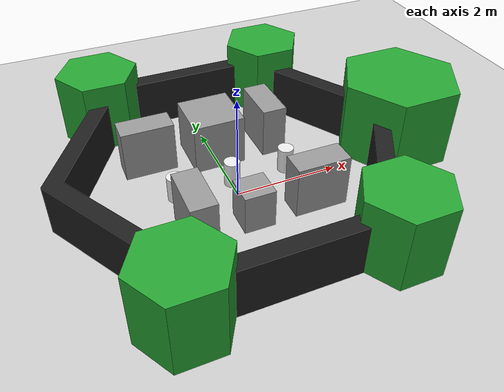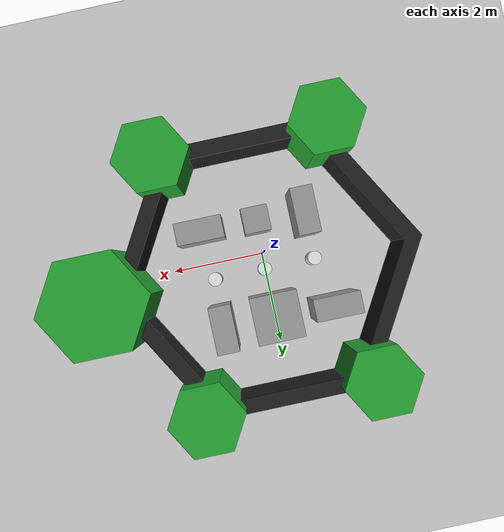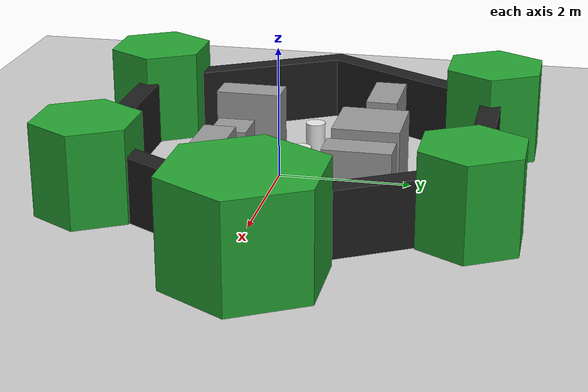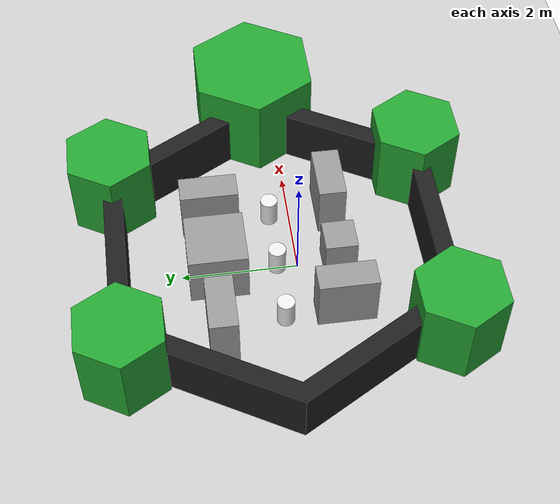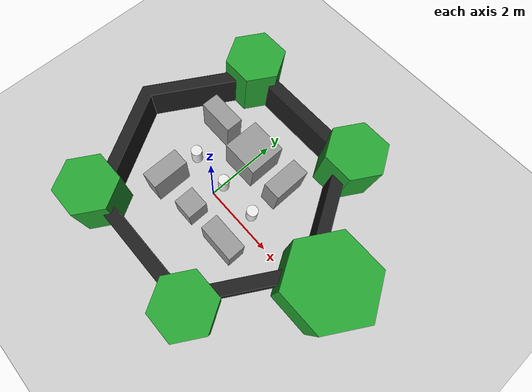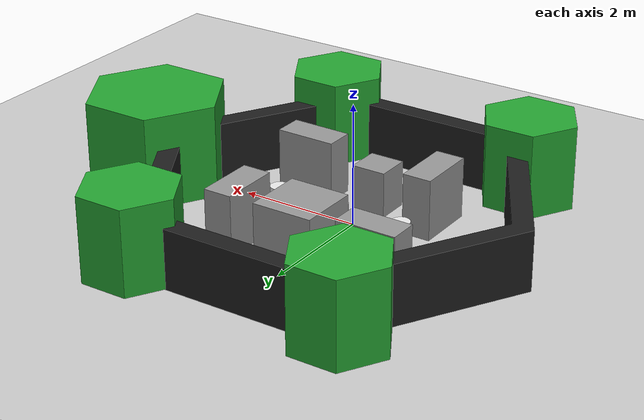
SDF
<sdf version="1.6">
 <world name="default">
  <model name="ground_plane">
   <static>1</static>
   <link name="link">
    <collision name="collision">
     <geometry><plane><normal>0 0 1</normal><size>100 100</size></plane></geometry>
     <surface>
      <contact><collide_bitmask>65535</collide_bitmask></contact>
      <friction><ode><mu>100</mu><mu2>50</mu2></ode></friction>
     </surface>
    </collision>
    <visual name="visual">
     <cast_shadows>0</cast_shadows>
     <geometry><plane><normal>0 0 1</normal><size>100 100</size></plane></geometry>
     <material>
      <script><uri>file://media/materials/scripts/gazebo.material</uri><name>Gazebo/Grey</name></script>
     </material>
    </visual>
   </link>
  </model>
  <model name="ros_symbol">
   <model name="modified_start_world.world">
    <link name="symbol">
     <visual name="one_one">
      <pose>-1.1 -1.1 0.25 0 -0 0</pose>
      <geometry><cylinder><radius>0.15</radius><length>0.5</length></cylinder></geometry>
      <material>
       <script><uri>file://media/materials/scripts/gazebo.material</uri><name>Gazebo/White</name></script>
      </material>
     </visual>
     <visual name="one_two">
      <pose>-1.1 0 0.25 0 -0 0</pose>
      <geometry><cylinder><radius>0.15</radius><length>0.5</length></cylinder></geometry>
      <material>
       <script><uri>file://media/materials/scripts/gazebo.material</uri><name>Gazebo/White</name></script>
      </material>
     </visual>
     <visual name="one_three">
      <pose>-1.1 1.1 0.25 0 -0 0</pose>
      <geometry><cylinder><radius>0.15</radius><length>0.5</length></cylinder></geometry>
      <material>
       <script><uri>file://media/materials/scripts/gazebo.material</uri><name>Gazebo/White</name></script>
      </material>
     </visual>
     <visual name="two_one">
      <pose>0 -1.1 0.25 0 -0 0</pose>
      <geometry><cylinder><radius>0.15</radius><length>0.5</length></cylinder></geometry>
      <material>
       <script><uri>file://media/materials/scripts/gazebo.material</uri><name>Gazebo/White</name></script>
      </material>
     </visual>
     <visual name="two_two">
      <pose>0 0 0.25 0 -0 0</pose>
      <geometry><cylinder><radius>0.15</radius><length>0.5</length></cylinder></geometry>
      <material>
       <script><uri>file://media/materials/scripts/gazebo.material</uri><name>Gazebo/White</name></script>
      </material>
     </visual>
     <visual name="two_three">
      <pose>0 1.1 0.25 0 -0 0</pose>
      <geometry><cylinder><radius>0.15</radius><length>0.5</length></cylinder></geometry>
      <material>
       <script><uri>file://media/materials/scripts/gazebo.material</uri><name>Gazebo/White</name></script>
      </material>
     </visual>
     <visual name="three_one">
      <pose>1.1 -1.1 0.25 0 -0 0</pose>
      <geometry><cylinder><radius>0.15</radius><length>0.5</length></cylinder></geometry>
      <material>
       <script><uri>file://media/materials/scripts/gazebo.material</uri><name>Gazebo/White</name></script>
      </material>
     </visual>
     <visual name="three_two">
      <pose>1.1 0 0.25 0 -0 0</pose>
      <geometry><cylinder><radius>0.15</radius><length>0.5</length></cylinder></geometry>
      <material>
       <script><uri>file://media/materials/scripts/gazebo.material</uri><name>Gazebo/White</name></script>
      </material>
     </visual>
     <visual name="three_three">
      <pose>1.1 1.1 0.25 0 -0 0</pose>
      <geometry><cylinder><radius>0.15</radius><length>0.5</length></cylinder></geometry>
      <material>
       <script><uri>file://media/materials/scripts/gazebo.material</uri><name>Gazebo/White</name></script>
      </material>
     </visual>
     <visual name="head">
      <pose>3.5 0 -0.5 0 -0 0</pose>
      <geometry><mesh><uri>model://turtlebot3/meshes/hexagon.dae</uri><scale>0.8 0.8 0.8</scale></mesh></geometry>
      <material>
       <script><uri>file://media/materials/scripts/gazebo.material</uri><name>Gazebo/Green</name></script>
      </material>
     </visual>
     <visual name="left_hand">
      <pose>1.8 2.7 0 0 -0 0</pose>
      <geometry>
       <mesh><uri>model://turtlebot3/meshes/hexagon.dae</uri><scale>0.55 0.55 0.55</scale></mesh>
      </geometry>
      <material>
       <script><uri>file://media/materials/scripts/gazebo.material</uri><name>Gazebo/Green</name></script>
      </material>
     </visual>
     <visual name="right_hand">
      <pose>1.8 -2.7 0 0 -0 0</pose>
      <geometry>
       <mesh><uri>model://turtlebot3/meshes/hexagon.dae</uri><scale>0.55 0.55 0.55</scale></mesh>
      </geometry>
      <material>
       <script><uri>file://media/materials/scripts/gazebo.material</uri><name>Gazebo/Green</name></script>
      </material>
     </visual>
     <visual name="left_foot">
      <pose>-1.8 2.7 0 0 -0 0</pose>
      <geometry>
       <mesh><uri>model://turtlebot3/meshes/hexagon.dae</uri><scale>0.55 0.55 0.55</scale></mesh>
      </geometry>
      <material>
       <script><uri>file://media/materials/scripts/gazebo.material</uri><name>Gazebo/Green</name></script>
      </material>
     </visual>
     <visual name="right_foot">
      <pose>-1.8 -2.7 0 0 -0 0</pose>
      <geometry>
       <mesh><uri>model://turtlebot3/meshes/hexagon.dae</uri><scale>0.55 0.55 0.55</scale></mesh>
      </geometry>
      <material>
       <script><uri>file://media/materials/scripts/gazebo.material</uri><name>Gazebo/Green</name></script>
      </material>
     </visual>
     <visual name="body">
      <pose>0 0 -0.3 0 0 -1.5708</pose>
      <geometry><mesh><uri>model://turtlebot3/meshes/wall.dae</uri><scale>0.25 0.25 0.25</scale></mesh></geometry>
      <material>
       <script><uri>file://media/materials/scripts/gazebo.material</uri><name>Gazebo/FlatBlack</name></script>
      </material>
     </visual>
     <collision name="one_one">
      <pose>-1.1 -1.1 0.25 0 -0 0</pose>
      <geometry><cylinder><radius>0.15</radius><length>0.5</length></cylinder></geometry>
      <surface>
       <friction>
        <ode><mu>1</mu><mu2>1</mu2><fdir1>0 0 0</fdir1><slip1>0</slip1><slip2>0</slip2></ode>
        <torsional>
         <coefficient>1</coefficient>
         <patch_radius>0</patch_radius>
         <surface_radius>0</surface_radius>
         <use_patch_radius>1</use_patch_radius>
         <ode><slip>0</slip></ode>
        </torsional>
       </friction>
       <bounce><restitution_coefficient>0</restitution_coefficient><threshold>1e+06</threshold></bounce>
       <contact>
        <collide_without_contact>0</collide_without_contact>
        <collide_without_contact_bitmask>1</collide_without_contact_bitmask>
        <collide_bitmask>1</collide_bitmask>
        <ode>
         <soft_cfm>0</soft_cfm>
         <soft_erp>0.2</soft_erp>
         <kp>1e+13</kp>
         <kd>1</kd>
         <max_vel>0.01</max_vel>
         <min_depth>0</min_depth>
        </ode>
        <bullet>
         <split_impulse>1</split_impulse>
         <split_impulse_penetration_threshold>-0.01</split_impulse_penetration_threshold>
         <soft_cfm>0</soft_cfm>
         <soft_erp>0.2</soft_erp>
         <kp>1e+13</kp>
         <kd>1</kd>
        </bullet>
       </contact>
      </surface>
     </collision>
     <collision name="one_two">
      <pose>-1.1 0 0.25 0 -0 0</pose>
      <geometry><cylinder><radius>0.15</radius><length>0.5</length></cylinder></geometry>
      <surface>
       <friction>
        <ode><mu>1</mu><mu2>1</mu2><fdir1>0 0 0</fdir1><slip1>0</slip1><slip2>0</slip2></ode>
        <torsional>
         <coefficient>1</coefficient>
         <patch_radius>0</patch_radius>
         <surface_radius>0</surface_radius>
         <use_patch_radius>1</use_patch_radius>
         <ode><slip>0</slip></ode>
        </torsional>
       </friction>
       <bounce><restitution_coefficient>0</restitution_coefficient><threshold>1e+06</threshold></bounce>
       <contact>
        <collide_without_contact>0</collide_without_contact>
        <collide_without_contact_bitmask>1</collide_without_contact_bitmask>
        <collide_bitmask>1</collide_bitmask>
        <ode>
         <soft_cfm>0</soft_cfm>
         <soft_erp>0.2</soft_erp>
         <kp>1e+13</kp>
         <kd>1</kd>
         <max_vel>0.01</max_vel>
         <min_depth>0</min_depth>
        </ode>
        <bullet>
         <split_impulse>1</split_impulse>
         <split_impulse_penetration_threshold>-0.01</split_impulse_penetration_threshold>
         <soft_cfm>0</soft_cfm>
         <soft_erp>0.2</soft_erp>
         <kp>1e+13</kp>
         <kd>1</kd>
        </bullet>
       </contact>
      </surface>
     </collision>
     <collision name="one_three">
      <pose>-1.1 1.1 0.25 0 -0 0</pose>
      <geometry><cylinder><radius>0.15</radius><length>0.5</length></cylinder></geometry>
      <surface>
       <friction>
        <ode><mu>1</mu><mu2>1</mu2><fdir1>0 0 0</fdir1><slip1>0</slip1><slip2>0</slip2></ode>
        <torsional>
         <coefficient>1</coefficient>
         <patch_radius>0</patch_radius>
         <surface_radius>0</surface_radius>
         <use_patch_radius>1</use_patch_radius>
         <ode><slip>0</slip></ode>
        </torsional>
       </friction>
       <bounce><restitution_coefficient>0</restitution_coefficient><threshold>1e+06</threshold></bounce>
       <contact>
        <collide_without_contact>0</collide_without_contact>
        <collide_without_contact_bitmask>1</collide_without_contact_bitmask>
        <collide_bitmask>1</collide_bitmask>
        <ode>
         <soft_cfm>0</soft_cfm>
         <soft_erp>0.2</soft_erp>
         <kp>1e+13</kp>
         <kd>1</kd>
         <max_vel>0.01</max_vel>
         <min_depth>0</min_depth>
        </ode>
        <bullet>
         <split_impulse>1</split_impulse>
         <split_impulse_penetration_threshold>-0.01</split_impulse_penetration_threshold>
         <soft_cfm>0</soft_cfm>
         <soft_erp>0.2</soft_erp>
         <kp>1e+13</kp>
         <kd>1</kd>
        </bullet>
       </contact>
      </surface>
     </collision>
     <collision name="two_one">
      <pose>0 -1.1 0.25 0 -0 0</pose>
      <geometry><cylinder><radius>0.15</radius><length>0.5</length></cylinder></geometry>
      <surface>
       <friction>
        <ode><mu>1</mu><mu2>1</mu2><fdir1>0 0 0</fdir1><slip1>0</slip1><slip2>0</slip2></ode>
        <torsional>
         <coefficient>1</coefficient>
         <patch_radius>0</patch_radius>
         <surface_radius>0</surface_radius>
         <use_patch_radius>1</use_patch_radius>
         <ode><slip>0</slip></ode>
        </torsional>
       </friction>
       <bounce><restitution_coefficient>0</restitution_coefficient><threshold>1e+06</threshold></bounce>
       <contact>
        <collide_without_contact>0</collide_without_contact>
        <collide_without_contact_bitmask>1</collide_without_contact_bitmask>
        <collide_bitmask>1</collide_bitmask>
        <ode>
         <soft_cfm>0</soft_cfm>
         <soft_erp>0.2</soft_erp>
         <kp>1e+13</kp>
         <kd>1</kd>
         <max_vel>0.01</max_vel>
         <min_depth>0</min_depth>
        </ode>
        <bullet>
         <split_impulse>1</split_impulse>
         <split_impulse_penetration_threshold>-0.01</split_impulse_penetration_threshold>
         <soft_cfm>0</soft_cfm>
         <soft_erp>0.2</soft_erp>
         <kp>1e+13</kp>
         <kd>1</kd>
        </bullet>
       </contact>
      </surface>
     </collision>
     <collision name="two_two">
      <pose>0 0 0.25 0 -0 0</pose>
      <geometry><cylinder><radius>0.15</radius><length>0.5</length></cylinder></geometry>
      <surface>
       <friction>
        <ode><mu>1</mu><mu2>1</mu2><fdir1>0 0 0</fdir1><slip1>0</slip1><slip2>0</slip2></ode>
        <torsional>
         <coefficient>1</coefficient>
         <patch_radius>0</patch_radius>
         <surface_radius>0</surface_radius>
         <use_patch_radius>1</use_patch_radius>
         <ode><slip>0</slip></ode>
        </torsional>
       </friction>
       <bounce><restitution_coefficient>0</restitution_coefficient><threshold>1e+06</threshold></bounce>
       <contact>
        <collide_without_contact>0</collide_without_contact>
        <collide_without_contact_bitmask>1</collide_without_contact_bitmask>
        <collide_bitmask>1</collide_bitmask>
        <ode>
         <soft_cfm>0</soft_cfm>
         <soft_erp>0.2</soft_erp>
         <kp>1e+13</kp>
         <kd>1</kd>
         <max_vel>0.01</max_vel>
         <min_depth>0</min_depth>
        </ode>
        <bullet>
         <split_impulse>1</split_impulse>
         <split_impulse_penetration_threshold>-0.01</split_impulse_penetration_threshold>
         <soft_cfm>0</soft_cfm>
         <soft_erp>0.2</soft_erp>
         <kp>1e+13</kp>
         <kd>1</kd>
        </bullet>
       </contact>
      </surface>
     </collision>
     <collision name="two_three">
      <pose>0 1.1 0.25 0 -0 0</pose>
      <geometry><cylinder><radius>0.15</radius><length>0.5</length></cylinder></geometry>
      <surface>
       <friction>
        <ode><mu>1</mu><mu2>1</mu2><fdir1>0 0 0</fdir1><slip1>0</slip1><slip2>0</slip2></ode>
        <torsional>
         <coefficient>1</coefficient>
         <patch_radius>0</patch_radius>
         <surface_radius>0</surface_radius>
         <use_patch_radius>1</use_patch_radius>
         <ode><slip>0</slip></ode>
        </torsional>
       </friction>
       <bounce><restitution_coefficient>0</restitution_coefficient><threshold>1e+06</threshold></bounce>
       <contact>
        <collide_without_contact>0</collide_without_contact>
        <collide_without_contact_bitmask>1</collide_without_contact_bitmask>
        <collide_bitmask>1</collide_bitmask>
        <ode>
         <soft_cfm>0</soft_cfm>
         <soft_erp>0.2</soft_erp>
         <kp>1e+13</kp>
         <kd>1</kd>
         <max_vel>0.01</max_vel>
         <min_depth>0</min_depth>
        </ode>
        <bullet>
         <split_impulse>1</split_impulse>
         <split_impulse_penetration_threshold>-0.01</split_impulse_penetration_threshold>
         <soft_cfm>0</soft_cfm>
         <soft_erp>0.2</soft_erp>
         <kp>1e+13</kp>
         <kd>1</kd>
        </bullet>
       </contact>
      </surface>
     </collision>
     <collision name="three_one">
      <pose>1.1 -1.1 0.25 0 -0 0</pose>
      <geometry><cylinder><radius>0.15</radius><length>0.5</length></cylinder></geometry>
      <surface>
       <friction>
        <ode><mu>1</mu><mu2>1</mu2><fdir1>0 0 0</fdir1><slip1>0</slip1><slip2>0</slip2></ode>
        <torsional>
         <coefficient>1</coefficient>
         <patch_radius>0</patch_radius>
         <surface_radius>0</surface_radius>
         <use_patch_radius>1</use_patch_radius>
         <ode><slip>0</slip></ode>
        </torsional>
       </friction>
       <bounce><restitution_coefficient>0</restitution_coefficient><threshold>1e+06</threshold></bounce>
       <contact>
        <collide_without_contact>0</collide_without_contact>
        <collide_without_contact_bitmask>1</collide_without_contact_bitmask>
        <collide_bitmask>1</collide_bitmask>
        <ode>
         <soft_cfm>0</soft_cfm>
         <soft_erp>0.2</soft_erp>
         <kp>1e+13</kp>
         <kd>1</kd>
         <max_vel>0.01</max_vel>
         <min_depth>0</min_depth>
        </ode>
        <bullet>
         <split_impulse>1</split_impulse>
         <split_impulse_penetration_threshold>-0.01</split_impulse_penetration_threshold>
         <soft_cfm>0</soft_cfm>
         <soft_erp>0.2</soft_erp>
         <kp>1e+13</kp>
         <kd>1</kd>
        </bullet>
       </contact>
      </surface>
     </collision>
     <collision name="three_two">
      <pose>1.1 0 0.25 0 -0 0</pose>
      <geometry><cylinder><radius>0.15</radius><length>0.5</length></cylinder></geometry>
      <surface>
       <friction>
        <ode><mu>1</mu><mu2>1</mu2><fdir1>0 0 0</fdir1><slip1>0</slip1><slip2>0</slip2></ode>
        <torsional>
         <coefficient>1</coefficient>
         <patch_radius>0</patch_radius>
         <surface_radius>0</surface_radius>
         <use_patch_radius>1</use_patch_radius>
         <ode><slip>0</slip></ode>
        </torsional>
       </friction>
       <bounce><restitution_coefficient>0</restitution_coefficient><threshold>1e+06</threshold></bounce>
       <contact>
        <collide_without_contact>0</collide_without_contact>
        <collide_without_contact_bitmask>1</collide_without_contact_bitmask>
        <collide_bitmask>1</collide_bitmask>
        <ode>
         <soft_cfm>0</soft_cfm>
         <soft_erp>0.2</soft_erp>
         <kp>1e+13</kp>
         <kd>1</kd>
         <max_vel>0.01</max_vel>
         <min_depth>0</min_depth>
        </ode>
        <bullet>
         <split_impulse>1</split_impulse>
         <split_impulse_penetration_threshold>-0.01</split_impulse_penetration_threshold>
         <soft_cfm>0</soft_cfm>
         <soft_erp>0.2</soft_erp>
         <kp>1e+13</kp>
         <kd>1</kd>
        </bullet>
       </contact>
      </surface>
     </collision>
     <collision name="three_three">
      <pose>1.1 1.1 0.25 0 -0 0</pose>
      <geometry><cylinder><radius>0.15</radius><length>0.5</length></cylinder></geometry>
      <surface>
       <friction>
        <ode><mu>1</mu><mu2>1</mu2><fdir1>0 0 0</fdir1><slip1>0</slip1><slip2>0</slip2></ode>
        <torsional>
         <coefficient>1</coefficient>
         <patch_radius>0</patch_radius>
         <surface_radius>0</surface_radius>
         <use_patch_radius>1</use_patch_radius>
         <ode><slip>0</slip></ode>
        </torsional>
       </friction>
       <bounce><restitution_coefficient>0</restitution_coefficient><threshold>1e+06</threshold></bounce>
       <contact>
        <collide_without_contact>0</collide_without_contact>
        <collide_without_contact_bitmask>1</collide_without_contact_bitmask>
        <collide_bitmask>1</collide_bitmask>
        <ode>
         <soft_cfm>0</soft_cfm>
         <soft_erp>0.2</soft_erp>
         <kp>1e+13</kp>
         <kd>1</kd>
         <max_vel>0.01</max_vel>
         <min_depth>0</min_depth>
        </ode>
        <bullet>
         <split_impulse>1</split_impulse>
         <split_impulse_penetration_threshold>-0.01</split_impulse_penetration_threshold>
         <soft_cfm>0</soft_cfm>
         <soft_erp>0.2</soft_erp>
         <kp>1e+13</kp>
         <kd>1</kd>
        </bullet>
       </contact>
      </surface>
     </collision>
     <collision name="head">
      <pose>3.5 0 -0.5 0 -0 0</pose>
      <geometry>
       <mesh>
        <uri>/home/rishabh/genesys2_ws/src/turtlebot3/turtlebot3_simulations/turtlebot3_gazebo/models/turtlebot3/meshes/hexagon.dae</uri>
        <scale>0.8 0.8 0.8</scale>
       </mesh>
      </geometry>
      <surface>
       <friction>
        <ode><mu>1</mu><mu2>1</mu2><fdir1>0 0 0</fdir1><slip1>0</slip1><slip2>0</slip2></ode>
        <torsional>
         <coefficient>1</coefficient>
         <patch_radius>0</patch_radius>
         <surface_radius>0</surface_radius>
         <use_patch_radius>1</use_patch_radius>
         <ode><slip>0</slip></ode>
        </torsional>
       </friction>
       <bounce><restitution_coefficient>0</restitution_coefficient><threshold>1e+06</threshold></bounce>
       <contact>
        <collide_without_contact>0</collide_without_contact>
        <collide_without_contact_bitmask>1</collide_without_contact_bitmask>
        <collide_bitmask>1</collide_bitmask>
        <ode>
         <soft_cfm>0</soft_cfm>
         <soft_erp>0.2</soft_erp>
         <kp>1e+13</kp>
         <kd>1</kd>
         <max_vel>0.01</max_vel>
         <min_depth>0</min_depth>
        </ode>
        <bullet>
         <split_impulse>1</split_impulse>
         <split_impulse_penetration_threshold>-0.01</split_impulse_penetration_threshold>
         <soft_cfm>0</soft_cfm>
         <soft_erp>0.2</soft_erp>
         <kp>1e+13</kp>
         <kd>1</kd>
        </bullet>
       </contact>
      </surface>
     </collision>
     <collision name="left_hand">
      <pose>1.8 2.7 0 0 -0 0</pose>
      <geometry>
       <mesh>
        <uri>/home/rishabh/genesys2_ws/src/turtlebot3/turtlebot3_simulations/turtlebot3_gazebo/models/turtlebot3/meshes/hexagon.dae</uri>
        <scale>0.55 0.55 0.55</scale>
       </mesh>
      </geometry>
      <surface>
       <friction>
        <ode><mu>1</mu><mu2>1</mu2><fdir1>0 0 0</fdir1><slip1>0</slip1><slip2>0</slip2></ode>
        <torsional>
         <coefficient>1</coefficient>
         <patch_radius>0</patch_radius>
         <surface_radius>0</surface_radius>
         <use_patch_radius>1</use_patch_radius>
         <ode><slip>0</slip></ode>
        </torsional>
       </friction>
       <bounce><restitution_coefficient>0</restitution_coefficient><threshold>1e+06</threshold></bounce>
       <contact>
        <collide_without_contact>0</collide_without_contact>
        <collide_without_contact_bitmask>1</collide_without_contact_bitmask>
        <collide_bitmask>1</collide_bitmask>
        <ode>
         <soft_cfm>0</soft_cfm>
         <soft_erp>0.2</soft_erp>
         <kp>1e+13</kp>
         <kd>1</kd>
         <max_vel>0.01</max_vel>
         <min_depth>0</min_depth>
        </ode>
        <bullet>
         <split_impulse>1</split_impulse>
         <split_impulse_penetration_threshold>-0.01</split_impulse_penetration_threshold>
         <soft_cfm>0</soft_cfm>
         <soft_erp>0.2</soft_erp>
         <kp>1e+13</kp>
         <kd>1</kd>
        </bullet>
       </contact>
      </surface>
     </collision>
     <collision name="left_foot">
      <pose>-1.8 2.7 0 0 -0 0</pose>
      <geometry>
       <mesh>
        <uri>/home/rishabh/genesys2_ws/src/turtlebot3/turtlebot3_simulations/turtlebot3_gazebo/models/turtlebot3/meshes/hexagon.dae</uri>
        <scale>0.55 0.55 0.55</scale>
       </mesh>
      </geometry>
      <surface>
       <friction>
        <ode><mu>1</mu><mu2>1</mu2><fdir1>0 0 0</fdir1><slip1>0</slip1><slip2>0</slip2></ode>
        <torsional>
         <coefficient>1</coefficient>
         <patch_radius>0</patch_radius>
         <surface_radius>0</surface_radius>
         <use_patch_radius>1</use_patch_radius>
         <ode><slip>0</slip></ode>
        </torsional>
       </friction>
       <bounce><restitution_coefficient>0</restitution_coefficient><threshold>1e+06</threshold></bounce>
       <contact>
        <collide_without_contact>0</collide_without_contact>
        <collide_without_contact_bitmask>1</collide_without_contact_bitmask>
        <collide_bitmask>1</collide_bitmask>
        <ode>
         <soft_cfm>0</soft_cfm>
         <soft_erp>0.2</soft_erp>
         <kp>1e+13</kp>
         <kd>1</kd>
         <max_vel>0.01</max_vel>
         <min_depth>0</min_depth>
        </ode>
        <bullet>
         <split_impulse>1</split_impulse>
         <split_impulse_penetration_threshold>-0.01</split_impulse_penetration_threshold>
         <soft_cfm>0</soft_cfm>
         <soft_erp>0.2</soft_erp>
         <kp>1e+13</kp>
         <kd>1</kd>
        </bullet>
       </contact>
      </surface>
     </collision>
     <collision name="right_hand">
      <pose>1.8 -2.7 0 0 -0 0</pose>
      <geometry>
       <mesh>
        <uri>/home/rishabh/genesys2_ws/src/turtlebot3/turtlebot3_simulations/turtlebot3_gazebo/models/turtlebot3/meshes/hexagon.dae</uri>
        <scale>0.55 0.55 0.55</scale>
       </mesh>
      </geometry>
      <surface>
       <friction>
        <ode><mu>1</mu><mu2>1</mu2><fdir1>0 0 0</fdir1><slip1>0</slip1><slip2>0</slip2></ode>
        <torsional>
         <coefficient>1</coefficient>
         <patch_radius>0</patch_radius>
         <surface_radius>0</surface_radius>
         <use_patch_radius>1</use_patch_radius>
         <ode><slip>0</slip></ode>
        </torsional>
       </friction>
       <bounce><restitution_coefficient>0</restitution_coefficient><threshold>1e+06</threshold></bounce>
       <contact>
        <collide_without_contact>0</collide_without_contact>
        <collide_without_contact_bitmask>1</collide_without_contact_bitmask>
        <collide_bitmask>1</collide_bitmask>
        <ode>
         <soft_cfm>0</soft_cfm>
         <soft_erp>0.2</soft_erp>
         <kp>1e+13</kp>
         <kd>1</kd>
         <max_vel>0.01</max_vel>
         <min_depth>0</min_depth>
        </ode>
        <bullet>
         <split_impulse>1</split_impulse>
         <split_impulse_penetration_threshold>-0.01</split_impulse_penetration_threshold>
         <soft_cfm>0</soft_cfm>
         <soft_erp>0.2</soft_erp>
         <kp>1e+13</kp>
         <kd>1</kd>
        </bullet>
       </contact>
      </surface>
     </collision>
     <collision name="right_foot">
      <pose>-1.8 -2.7 0 0 -0 0</pose>
      <geometry>
       <mesh>
        <uri>/home/rishabh/genesys2_ws/src/turtlebot3/turtlebot3_simulations/turtlebot3_gazebo/models/turtlebot3/meshes/hexagon.dae</uri>
        <scale>0.55 0.55 0.55</scale>
       </mesh>
      </geometry>
      <surface>
       <friction>
        <ode><mu>1</mu><mu2>1</mu2><fdir1>0 0 0</fdir1><slip1>0</slip1><slip2>0</slip2></ode>
        <torsional>
         <coefficient>1</coefficient>
         <patch_radius>0</patch_radius>
         <surface_radius>0</surface_radius>
         <use_patch_radius>1</use_patch_radius>
         <ode><slip>0</slip></ode>
        </torsional>
       </friction>
       <bounce><restitution_coefficient>0</restitution_coefficient><threshold>1e+06</threshold></bounce>
       <contact>
        <collide_without_contact>0</collide_without_contact>
        <collide_without_contact_bitmask>1</collide_without_contact_bitmask>
        <collide_bitmask>1</collide_bitmask>
        <ode>
         <soft_cfm>0</soft_cfm>
         <soft_erp>0.2</soft_erp>
         <kp>1e+13</kp>
         <kd>1</kd>
         <max_vel>0.01</max_vel>
         <min_depth>0</min_depth>
        </ode>
        <bullet>
         <split_impulse>1</split_impulse>
         <split_impulse_penetration_threshold>-0.01</split_impulse_penetration_threshold>
         <soft_cfm>0</soft_cfm>
         <soft_erp>0.2</soft_erp>
         <kp>1e+13</kp>
         <kd>1</kd>
        </bullet>
       </contact>
      </surface>
     </collision>
     <collision name="body">
      <pose>0 0 -0.3 0 0 -1.5708</pose>
      <geometry>
       <mesh>
        <uri>/home/rishabh/genesys2_ws/src/turtlebot3/turtlebot3_simulations/turtlebot3_gazebo/models/turtlebot3/meshes/wall.dae</uri>
        <scale>0.25 0.25 0.25</scale>
       </mesh>
      </geometry>
      <surface>
       <friction>
        <ode><mu>1</mu><mu2>1</mu2><fdir1>0 0 0</fdir1><slip1>0</slip1><slip2>0</slip2></ode>
        <torsional>
         <coefficient>1</coefficient>
         <patch_radius>0</patch_radius>
         <surface_radius>0</surface_radius>
         <use_patch_radius>1</use_patch_radius>
         <ode><slip>0</slip></ode>
        </torsional>
       </friction>
       <bounce><restitution_coefficient>0</restitution_coefficient><threshold>1e+06</threshold></bounce>
       <contact>
        <collide_without_contact>0</collide_without_contact>
        <collide_without_contact_bitmask>1</collide_without_contact_bitmask>
        <collide_bitmask>1</collide_bitmask>
        <ode>
         <soft_cfm>0</soft_cfm>
         <soft_erp>0.2</soft_erp>
         <kp>1e+13</kp>
         <kd>1</kd>
         <max_vel>0.01</max_vel>
         <min_depth>0</min_depth>
        </ode>
        <bullet>
         <split_impulse>1</split_impulse>
         <split_impulse_penetration_threshold>-0.01</split_impulse_penetration_threshold>
         <soft_cfm>0</soft_cfm>
         <soft_erp>0.2</soft_erp>
         <kp>1e+13</kp>
         <kd>1</kd>
        </bullet>
       </contact>
      </surface>
     </collision>
    </link>
    <link name="link_0">
     <inertial>
      <mass>1</mass>
      <inertia>
       <ixx>0.166667</ixx>
       <ixy>0</ixy>
       <ixz>0</ixz>
       <iyy>0.166667</iyy>
       <iyz>0</iyz>
       <izz>0.166667</izz>
      </inertia>
     </inertial>
     <pose>-0.018227 1.03868 0.5 0 -0 0</pose>
     <visual name="visual">
      <geometry><box><size>1 1 1</size></box></geometry>
      <material>
       <lighting>1</lighting>
       <script><uri>file://media/materials/scripts/gazebo.material</uri><name>Gazebo/Grey</name></script>
      </material>
     </visual>
     <collision name="collision">
      <geometry><box><size>1 1 1</size></box></geometry>
      <surface>
       <friction>
        <ode><mu>1</mu><mu2>1</mu2><fdir1>0 0 0</fdir1><slip1>0</slip1><slip2>0</slip2></ode>
        <torsional>
         <coefficient>1</coefficient>
         <patch_radius>0</patch_radius>
         <surface_radius>0</surface_radius>
         <use_patch_radius>1</use_patch_radius>
         <ode><slip>0</slip></ode>
        </torsional>
       </friction>
       <bounce><restitution_coefficient>0</restitution_coefficient><threshold>1e+06</threshold></bounce>
       <contact>
        <collide_without_contact>0</collide_without_contact>
        <collide_without_contact_bitmask>1</collide_without_contact_bitmask>
        <collide_bitmask>1</collide_bitmask>
        <ode>
         <soft_cfm>0</soft_cfm>
         <soft_erp>0.2</soft_erp>
         <kp>1e+13</kp>
         <kd>1</kd>
         <max_vel>0.01</max_vel>
         <min_depth>0</min_depth>
        </ode>
        <bullet>
         <split_impulse>1</split_impulse>
         <split_impulse_penetration_threshold>-0.01</split_impulse_penetration_threshold>
         <soft_cfm>0</soft_cfm>
         <soft_erp>0.2</soft_erp>
         <kp>1e+13</kp>
         <kd>1</kd>
        </bullet>
       </contact>
      </surface>
     </collision>
    </link>
    <link name="link_0_clone">
     <inertial>
      <mass>0.237024</mass>
      <inertia>
       <ixx>0.017243</ixx>
       <ixy>0</ixy>
       <ixz>0</ixz>
       <iyy>0.0176037</iyy>
       <iyz>0</iyz>
       <izz>0.0124376</izz>
      </inertia>
     </inertial>
     <pose>-0.019475 -1.06633 0.379935 0 -0 0</pose>
     <visual name="visual">
      <geometry><box><size>0.56919 0.552914 0.753167</size></box></geometry>
      <material>
       <lighting>1</lighting>
       <script><uri>file://media/materials/scripts/gazebo.material</uri><name>Gazebo/Grey</name></script>
       <shader type="pixel"/>
      </material>
     </visual>
     <collision name="collision">
      <geometry><box><size>0.56919 0.552914 0.753167</size></box></geometry>
      <surface>
       <friction>
        <ode><mu>1</mu><mu2>1</mu2><fdir1>0 0 0</fdir1><slip1>0</slip1><slip2>0</slip2></ode>
        <torsional>
         <coefficient>1</coefficient>
         <patch_radius>0</patch_radius>
         <surface_radius>0</surface_radius>
         <use_patch_radius>1</use_patch_radius>
         <ode><slip>0</slip></ode>
        </torsional>
       </friction>
       <bounce><restitution_coefficient>0</restitution_coefficient><threshold>1e+06</threshold></bounce>
       <contact>
        <collide_without_contact>0</collide_without_contact>
        <collide_without_contact_bitmask>1</collide_without_contact_bitmask>
        <collide_bitmask>1</collide_bitmask>
        <ode>
         <soft_cfm>0</soft_cfm>
         <soft_erp>0.2</soft_erp>
         <kp>1e+13</kp>
         <kd>1</kd>
         <max_vel>0.01</max_vel>
         <min_depth>0</min_depth>
        </ode>
        <bullet>
         <split_impulse>1</split_impulse>
         <split_impulse_penetration_threshold>-0.01</split_impulse_penetration_threshold>
         <soft_cfm>0</soft_cfm>
         <soft_erp>0.2</soft_erp>
         <kp>1e+13</kp>
         <kd>1</kd>
        </bullet>
       </contact>
      </surface>
     </collision>
    </link>
    <link name="link_1">
     <inertial>
      <mass>0.474248</mass>
      <inertia>
       <ixx>0.0790414</ixx>
       <ixy>0</ixy>
       <ixz>0</ixz>
       <iyy>0.0484096</iyy>
       <iyz>0</iyz>
       <izz>0.0484096</izz>
      </inertia>
     </inertial>
     <pose>1.12048 1.0532 0.5 0 -0 0</pose>
     <visual name="visual">
      <geometry><box><size>0.474254 1 1</size></box></geometry>
      <material>
       <lighting>1</lighting>
       <script><uri>file://media/materials/scripts/gazebo.material</uri><name>Gazebo/Grey</name></script>
      </material>
     </visual>
     <collision name="collision">
      <geometry><box><size>0.474254 1 1</size></box></geometry>
      <surface>
       <friction>
        <ode><mu>1</mu><mu2>1</mu2><fdir1>0 0 0</fdir1><slip1>0</slip1><slip2>0</slip2></ode>
        <torsional>
         <coefficient>1</coefficient>
         <patch_radius>0</patch_radius>
         <surface_radius>0</surface_radius>
         <use_patch_radius>1</use_patch_radius>
         <ode><slip>0</slip></ode>
        </torsional>
       </friction>
       <bounce><restitution_coefficient>0</restitution_coefficient><threshold>1e+06</threshold></bounce>
       <contact>
        <collide_without_contact>0</collide_without_contact>
        <collide_without_contact_bitmask>1</collide_without_contact_bitmask>
        <collide_bitmask>1</collide_bitmask>
        <ode>
         <soft_cfm>0</soft_cfm>
         <soft_erp>0.2</soft_erp>
         <kp>1e+13</kp>
         <kd>1</kd>
         <max_vel>0.01</max_vel>
         <min_depth>0</min_depth>
        </ode>
        <bullet>
         <split_impulse>1</split_impulse>
         <split_impulse_penetration_threshold>-0.01</split_impulse_penetration_threshold>
         <soft_cfm>0</soft_cfm>
         <soft_erp>0.2</soft_erp>
         <kp>1e+13</kp>
         <kd>1</kd>
        </bullet>
       </contact>
      </surface>
     </collision>
    </link>
    <link name="link_1_clone">
     <inertial>
      <mass>0.474248</mass>
      <inertia>
       <ixx>0.0790414</ixx>
       <ixy>0</ixy>
       <ixz>0</ixz>
       <iyy>0.0484096</iyy>
       <iyz>0</iyz>
       <izz>0.0484096</izz>
      </inertia>
     </inertial>
     <pose>-1.05126 -1.01456 0.5 0 -0 0</pose>
     <visual name="visual">
      <geometry><box><size>0.474254 1 1</size></box></geometry>
      <material>
       <lighting>1</lighting>
       <script><uri>file://media/materials/scripts/gazebo.material</uri><name>Gazebo/Grey</name></script>
       <shader type="pixel"/>
      </material>
     </visual>
     <collision name="collision">
      <geometry><box><size>0.474254 1 1</size></box></geometry>
      <surface>
       <friction>
        <ode><mu>1</mu><mu2>1</mu2><fdir1>0 0 0</fdir1><slip1>0</slip1><slip2>0</slip2></ode>
        <torsional>
         <coefficient>1</coefficient>
         <patch_radius>0</patch_radius>
         <surface_radius>0</surface_radius>
         <use_patch_radius>1</use_patch_radius>
         <ode><slip>0</slip></ode>
        </torsional>
       </friction>
       <bounce><restitution_coefficient>0</restitution_coefficient><threshold>1e+06</threshold></bounce>
       <contact>
        <collide_without_contact>0</collide_without_contact>
        <collide_without_contact_bitmask>1</collide_without_contact_bitmask>
        <collide_bitmask>1</collide_bitmask>
        <ode>
         <soft_cfm>0</soft_cfm>
         <soft_erp>0.2</soft_erp>
         <kp>1e+13</kp>
         <kd>1</kd>
         <max_vel>0.01</max_vel>
         <min_depth>0</min_depth>
        </ode>
        <bullet>
         <split_impulse>1</split_impulse>
         <split_impulse_penetration_threshold>-0.01</split_impulse_penetration_threshold>
         <soft_cfm>0</soft_cfm>
         <soft_erp>0.2</soft_erp>
         <kp>1e+13</kp>
         <kd>1</kd>
        </bullet>
       </contact>
      </surface>
     </collision>
    </link>
    <link name="link_1_clone_clone">
     <inertial>
      <mass>0.474248</mass>
      <inertia>
       <ixx>0.0790414</ixx>
       <ixy>0</ixy>
       <ixz>0</ixz>
       <iyy>0.0484096</iyy>
       <iyz>0</iyz>
       <izz>0.0484096</izz>
      </inertia>
     </inertial>
     <pose>-1.30262 1.07948 0.5 0 0 -1.57628</pose>
     <visual name="visual">
      <geometry><box><size>0.474254 1 1</size></box></geometry>
      <material>
       <lighting>1</lighting>
       <script><uri>file://media/materials/scripts/gazebo.material</uri><name>Gazebo/Grey</name></script>
       <shader type="pixel"/>
      </material>
     </visual>
     <collision name="collision">
      <geometry><box><size>0.474254 1 1</size></box></geometry>
      <surface>
       <friction>
        <ode><mu>1</mu><mu2>1</mu2><fdir1>0 0 0</fdir1><slip1>0</slip1><slip2>0</slip2></ode>
        <torsional>
         <coefficient>1</coefficient>
         <patch_radius>0</patch_radius>
         <surface_radius>0</surface_radius>
         <use_patch_radius>1</use_patch_radius>
         <ode><slip>0</slip></ode>
        </torsional>
       </friction>
       <bounce><restitution_coefficient>0</restitution_coefficient><threshold>1e+06</threshold></bounce>
       <contact>
        <collide_without_contact>0</collide_without_contact>
        <collide_without_contact_bitmask>1</collide_without_contact_bitmask>
        <collide_bitmask>1</collide_bitmask>
        <ode>
         <soft_cfm>0</soft_cfm>
         <soft_erp>0.2</soft_erp>
         <kp>1e+13</kp>
         <kd>1</kd>
         <max_vel>0.01</max_vel>
         <min_depth>0</min_depth>
        </ode>
        <bullet>
         <split_impulse>1</split_impulse>
         <split_impulse_penetration_threshold>-0.01</split_impulse_penetration_threshold>
         <soft_cfm>0</soft_cfm>
         <soft_erp>0.2</soft_erp>
         <kp>1e+13</kp>
         <kd>1</kd>
        </bullet>
       </contact>
      </surface>
     </collision>
    </link>
    <link name="link_1_clone_clone_clone">
     <inertial>
      <mass>0.474248</mass>
      <inertia>
       <ixx>0.0790414</ixx>
       <ixy>0</ixy>
       <ixz>0</ixz>
       <iyy>0.0484096</iyy>
       <iyz>0</iyz>
       <izz>0.0484096</izz>
      </inertia>
     </inertial>
     <pose>1.18914 -1.06622 0.5 0 0 -1.57628</pose>
     <visual name="visual">
      <geometry><box><size>0.474254 1 1</size></box></geometry>
      <material>
       <lighting>1</lighting>
       <script><uri>file://media/materials/scripts/gazebo.material</uri><name>Gazebo/Grey</name></script>
       <shader type="pixel"/>
      </material>
     </visual>
     <collision name="collision">
      <geometry><box><size>0.474254 1 1</size></box></geometry>
      <surface>
       <friction>
        <ode><mu>1</mu><mu2>1</mu2><fdir1>0 0 0</fdir1><slip1>0</slip1><slip2>0</slip2></ode>
        <torsional>
         <coefficient>1</coefficient>
         <patch_radius>0</patch_radius>
         <surface_radius>0</surface_radius>
         <use_patch_radius>1</use_patch_radius>
         <ode><slip>0</slip></ode>
        </torsional>
       </friction>
       <bounce><restitution_coefficient>0</restitution_coefficient><threshold>1e+06</threshold></bounce>
       <contact>
        <collide_without_contact>0</collide_without_contact>
        <collide_without_contact_bitmask>1</collide_without_contact_bitmask>
        <collide_bitmask>1</collide_bitmask>
        <ode>
         <soft_cfm>0</soft_cfm>
         <soft_erp>0.2</soft_erp>
         <kp>1e+13</kp>
         <kd>1</kd>
         <max_vel>0.01</max_vel>
         <min_depth>0</min_depth>
        </ode>
        <bullet>
         <split_impulse>1</split_impulse>
         <split_impulse_penetration_threshold>-0.01</split_impulse_penetration_threshold>
         <soft_cfm>0</soft_cfm>
         <soft_erp>0.2</soft_erp>
         <kp>1e+13</kp>
         <kd>1</kd>
        </bullet>
       </contact>
      </surface>
     </collision>
    </link>
    <static>1</static>
    <pose>0.002075 -0.004433 0 0 -0 0</pose>
   </model>
   <static>1</static>
   <pose>0.026596 0.354615 0 0 -0 0</pose>
  </model>
 </world>
</sdf>
